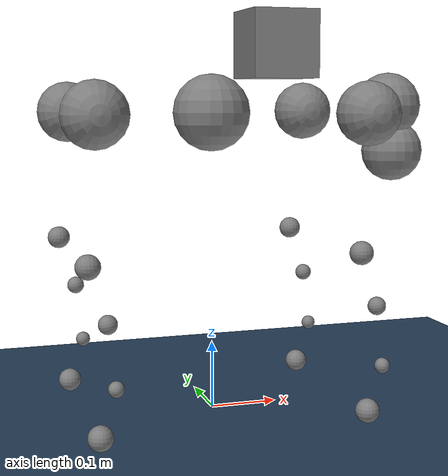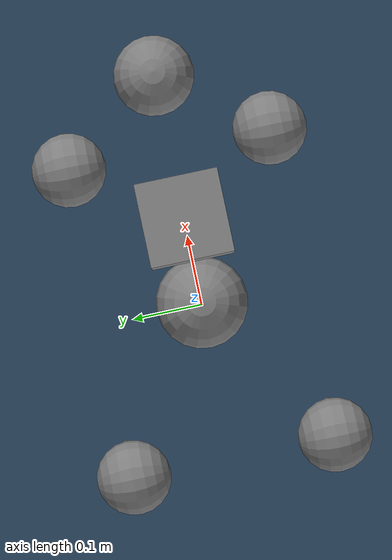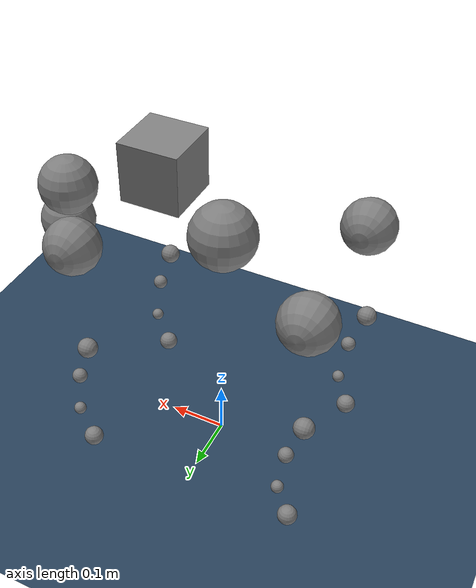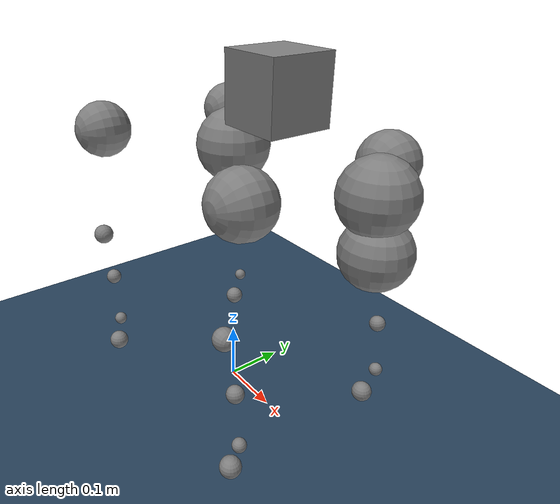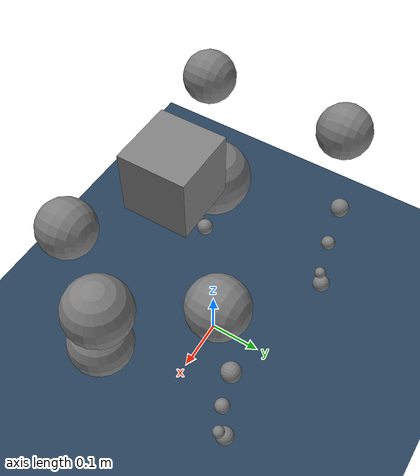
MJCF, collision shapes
<mujoco model="go2 scene">
  <include file="go2_payload.xml"/>

  <statistic center="0 0 0.1" extent="0.8"/>

  <visual>
    <headlight diffuse="0.6 0.6 0.6" ambient="0.3 0.3 0.3" specular="0 0 0"/>
    <rgba haze="0.15 0.25 0.35 1"/>
    <global azimuth="-130" elevation="-20"/>
  </visual>

  <asset>
    <texture type="skybox" builtin="gradient" rgb1="0.3 0.5 0.7" rgb2="0 0 0" width="512" height="3072"/>
    <texture type="2d" name="groundplane" builtin="checker" mark="edge" rgb1="0.2 0.3 0.4" rgb2="0.1 0.2 0.3"
      markrgb="0.8 0.8 0.8" width="300" height="300"/>
    <material name="groundplane" texture="groundplane" texuniform="true" texrepeat="5 5" reflectance="0.2"/>
  </asset>

  <worldbody>
    <light pos="0 0 1.5" dir="0 0 -1" directional="true"/>
    <geom name="floor" size="0 0 0.05" type="plane" material="groundplane" friction="5 0.2 0.1"/>
  </worldbody>
</mujoco>

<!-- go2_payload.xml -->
<mujoco model="go2">
  <compiler angle="radian" meshdir="assets" autolimits="false"/>

  <option timestep="0.005" impratio="5"/>
  <option cone="pyramidal" impratio="100" iterations="1" ls_iterations="5">
    <flag eulerdamp="disable"/>
  </option>

  <contact>
    <!-- Exclude collisions between all body parts -->

    <!-- Exclude trunk with thigh, hip and foot -->
    <exclude body1="FR_hip" body2="trunk"/>
    <exclude body1="FL_hip" body2="trunk"/>
    <exclude body1="RR_hip" body2="trunk"/>
    <exclude body1="RL_hip" body2="trunk"/>

    <exclude body1="FR_thigh" body2="trunk"/>
    <exclude body1="FL_thigh" body2="trunk"/>
    <exclude body1="RR_thigh" body2="trunk"/>
    <exclude body1="RL_thigh" body2="trunk"/>

    <exclude body1="FR_calf" body2="trunk"/>
    <exclude body1="FL_calf" body2="trunk"/>
    <exclude body1="RR_calf" body2="trunk"/>
    <exclude body1="RL_calf" body2="trunk"/>

    <exclude body1="FR_foot" body2="trunk"/>
    <exclude body1="FL_foot" body2="trunk"/>
    <exclude body1="RR_foot" body2="trunk"/>
    <exclude body1="RL_foot" body2="trunk"/>

    <!-- Exclude collisions between hips and thights -->
    <exclude body1="FR_hip" body2="FR_thigh"/>
    <exclude body1="FR_hip" body2="FL_thigh"/>
    <exclude body1="FR_hip" body2="RR_thigh"/>
    <exclude body1="FR_hip" body2="RL_thigh"/>

    <exclude body1="FL_hip" body2="FR_thigh"/>
    <exclude body1="FL_hip" body2="FL_thigh"/>
    <exclude body1="FL_hip" body2="RR_thigh"/>
    <exclude body1="FL_hip" body2="RL_thigh"/>

    <exclude body1="RR_hip" body2="FR_thigh"/>
    <exclude body1="RR_hip" body2="FL_thigh"/>
    <exclude body1="RR_hip" body2="RR_thigh"/>
    <exclude body1="RR_hip" body2="RL_thigh"/>

    <exclude body1="RL_hip" body2="FR_thigh"/>
    <exclude body1="RL_hip" body2="FL_thigh"/>
    <exclude body1="RL_hip" body2="RR_thigh"/>
    <exclude body1="RL_hip" body2="RL_thigh"/>

    <!-- Exclude collisions between hips and calfs -->
    <exclude body1="FR_hip" body2="FR_calf"/>
    <exclude body1="FR_hip" body2="FL_calf"/>
    <exclude body1="FR_hip" body2="RR_calf"/>
    <exclude body1="FR_hip" body2="RL_calf"/>

    <exclude body1="FL_hip" body2="FR_calf"/>
    <exclude body1="FL_hip" body2="FL_calf"/>
    <exclude body1="FL_hip" body2="RR_calf"/>
    <exclude body1="FL_hip" body2="RL_calf"/>

    <exclude body1="RR_hip" body2="FR_calf"/>
    <exclude body1="RR_hip" body2="FL_calf"/>
    <exclude body1="RR_hip" body2="RR_calf"/>
    <exclude body1="RR_hip" body2="RL_calf"/>

    <exclude body1="RL_hip" body2="FR_calf"/>
    <exclude body1="RL_hip" body2="FL_calf"/>
    <exclude body1="RL_hip" body2="RR_calf"/>
    <exclude body1="RL_hip" body2="RL_calf"/>

    <!-- Exclude collisions between hips and feet -->
    <exclude body1="FR_hip" body2="FR_foot"/>
    <exclude body1="FR_hip" body2="FL_foot"/>
    <exclude body1="FR_hip" body2="RR_foot"/>
    <exclude body1="FR_hip" body2="RL_foot"/>

    <exclude body1="FL_hip" body2="FR_foot"/>
    <exclude body1="FL_hip" body2="FL_foot"/>
    <exclude body1="FL_hip" body2="RR_foot"/>
    <exclude body1="FL_hip" body2="RL_foot"/>

    <exclude body1="RR_hip" body2="FR_foot"/>
    <exclude body1="RR_hip" body2="FL_foot"/>
    <exclude body1="RR_hip" body2="RR_foot"/>
    <exclude body1="RR_hip" body2="RL_foot"/>

    <exclude body1="RL_hip" body2="FR_foot"/>
    <exclude body1="RL_hip" body2="FL_foot"/>
    <exclude body1="RL_hip" body2="RR_foot"/>
    <exclude body1="RL_hip" body2="RL_foot"/>

    <!-- Exclude collisions between thighs and feet -->
    <exclude body1="FR_thigh" body2="FR_foot"/>
    <exclude body1="FR_thigh" body2="FL_foot"/>
    <exclude body1="FR_thigh" body2="RR_foot"/>
    <exclude body1="FR_thigh" body2="RL_foot"/>

    <exclude body1="FL_thigh" body2="FR_foot"/>
    <exclude body1="FL_thigh" body2="FL_foot"/>
    <exclude body1="FL_thigh" body2="RR_foot"/>
    <exclude body1="FL_thigh" body2="RL_foot"/>

    <exclude body1="RR_thigh" body2="FR_foot"/>
    <exclude body1="RR_thigh" body2="FL_foot"/>
    <exclude body1="RR_thigh" body2="RR_foot"/>
    <exclude body1="RR_thigh" body2="RL_foot"/>

    <exclude body1="RL_thigh" body2="FR_foot"/>
    <exclude body1="RL_thigh" body2="FL_foot"/>
    <exclude body1="RL_thigh" body2="RR_foot"/>
    <exclude body1="RL_thigh" body2="RL_foot"/>

    <!-- Exclude collisions between calfs and thighs -->
    <exclude body1="FR_calf" body2="FR_thigh"/>
    <exclude body1="FR_calf" body2="FL_thigh"/>
    <exclude body1="FR_calf" body2="RR_thigh"/>
    <exclude body1="FR_calf" body2="RL_thigh"/>

    <exclude body1="FL_calf" body2="FR_thigh"/>
    <exclude body1="FL_calf" body2="FL_thigh"/>
    <exclude body1="FL_calf" body2="RR_thigh"/>
    <exclude body1="FL_calf" body2="RL_thigh"/>

    <exclude body1="RR_calf" body2="FR_thigh"/>
    <exclude body1="RR_calf" body2="FL_thigh"/>
    <exclude body1="RR_calf" body2="RR_thigh"/>
    <exclude body1="RR_calf" body2="RL_thigh"/>

    <exclude body1="RL_calf" body2="FR_thigh"/>
    <exclude body1="RL_calf" body2="FL_thigh"/>
    <exclude body1="RL_calf" body2="RR_thigh"/>
    <exclude body1="RL_calf" body2="RL_thigh"/>

    <!-- Exclude collisions between calfs and feet -->
    <exclude body1="FR_calf" body2="FR_foot"/>
    <exclude body1="FR_calf" body2="FL_foot"/>
    <exclude body1="FR_calf" body2="RR_foot"/>
    <exclude body1="FR_calf" body2="RL_foot"/>

    <exclude body1="FL_calf" body2="FR_foot"/>
    <exclude body1="FL_calf" body2="FL_foot"/>
    <exclude body1="FL_calf" body2="RR_foot"/>
    <exclude body1="FL_calf" body2="RL_foot"/>

    <exclude body1="RR_calf" body2="FR_foot"/>
    <exclude body1="RR_calf" body2="FL_foot"/>
    <exclude body1="RR_calf" body2="RR_foot"/>
    <exclude body1="RR_calf" body2="RL_foot"/>

    <exclude body1="RL_calf" body2="FR_foot"/>
    <exclude body1="RL_calf" body2="FL_foot"/>
    <exclude body1="RL_calf" body2="RR_foot"/>
    <exclude body1="RL_calf" body2="RL_foot"/>

    <!-- Exclude hips, thigh, calfs and feet between each other -->
    <exclude body1="FR_hip" body2="FL_hip"/>
    <exclude body1="FR_hip" body2="RR_hip"/>
    <exclude body1="FR_hip" body2="RL_hip"/>
    <exclude body1="FL_hip" body2="RR_hip"/>
    <exclude body1="FL_hip" body2="RL_hip"/>
    <exclude body1="RR_hip" body2="RL_hip"/>

    <exclude body1="FR_thigh" body2="FL_thigh"/>
    <exclude body1="FR_thigh" body2="RR_thigh"/>
    <exclude body1="FR_thigh" body2="RL_thigh"/>
    <exclude body1="FL_thigh" body2="RR_thigh"/>
    <exclude body1="FL_thigh" body2="RL_thigh"/>
    <exclude body1="RR_thigh" body2="RL_thigh"/>

    <exclude body1="FR_calf" body2="FL_calf"/>
    <exclude body1="FR_calf" body2="RR_calf"/>
    <exclude body1="FR_calf" body2="RL_calf"/>
    <exclude body1="FL_calf" body2="RR_calf"/>
    <exclude body1="FL_calf" body2="RL_calf"/>
    <exclude body1="RR_calf" body2="RL_calf"/>

    <exclude body1="FR_foot" body2="FL_foot"/>
    <exclude body1="FR_foot" body2="RR_foot"/>
    <exclude body1="FR_foot" body2="RL_foot"/>
    <exclude body1="FL_foot" body2="RR_foot"/>
    <exclude body1="FL_foot" body2="RL_foot"/>
    <exclude body1="RR_foot" body2="RL_foot"/>
  </contact>

  <default>
    <default class="go2">
      <geom friction="0.6" condim="3"/>
      <joint axis="0 1 0" armature="0.01"/>
      <default class="abduction">
        <joint axis="1 0 0" />
      </default>
      <default class="hip">
        <default class="front_hip">
        </default>
        <default class="back_hip">
        </default>
      </default>
      <default class="knee">
      </default>
      <default class="visual">
        <geom type="mesh" contype="0" conaffinity="0" group="2"/>
      </default>
      <default class="collision">
        <geom group="3"/>
        <default class="foot">
          <geom size="0.0175" priority="1" solimp="0.015 1 0.031" condim="3"
            friction="0.8 0.02 0.01"/>
        </default>
      </default>
    </default>
  </default>

  <asset>
    <material name="metal" rgba=".9 .95 .95 1"/>
    <material name="black" rgba="0 0 0 1"/>
    <material name="white" rgba="1 1 1 1"/>
    <material name="gray" rgba="0.671705 0.692426 0.774270 1"/>

    <mesh name="base_0" file="base_0.obj"/>
    <mesh name="base_1" file="base_1.obj"/>
    <mesh name="base_2" file="base_2.obj"/>
    <mesh name="base_3" file="base_3.obj"/>
    <mesh name="base_4" file="base_4.obj"/>
    <mesh name="hip_0" file="hip_0.obj"/>
    <mesh name="hip_1" file="hip_1.obj"/>
    <mesh name="thigh_0" file="thigh_0.obj"/>
    <mesh name="thigh_1" file="thigh_1.obj"/>
    <mesh name="thigh_mirror_0" file="thigh_mirror_0.obj"/>
    <mesh name="thigh_mirror_1" file="thigh_mirror_1.obj"/>
    <mesh name="calf_0" file="calf_0.obj"/>
    <mesh name="calf_1" file="calf_1.obj"/>
    <mesh name="calf_mirror_0" file="calf_mirror_0.obj"/>
    <mesh name="calf_mirror_1" file="calf_mirror_1.obj"/>
    <mesh file="foot.obj"/>
  </asset>

  <worldbody>
    <light name="spotlight" mode="targetbodycom" target="trunk" pos="0 -1 2"/>
    <body name="trunk" pos="0 0 0.445" childclass="go2">

      <camera name="tracking" mode="trackcom" pos="0 -1 0.8" xyaxes="1 0 0 0 1 1"/>
      <inertial pos="0.021112 0 -0.005366" quat="-0.000543471 0.713435 -0.00173769 0.700719" mass="6.921"
        diaginertia="0.107027 0.0980771 0.0244531"/>
      <joint name="floating" type="free"/>
      <geom name="base_mirror_0" mesh="base_0" material="black" class="visual"/>
      <geom name="base_mirror_1" mesh="base_1" material="black" class="visual"/>
      <geom name="base_mirror_2" mesh="base_2" material="black" class="visual"/>
      <geom name="base_mirror_3" mesh="base_3" material="white" class="visual"/>
      <geom name="base_mirror_4" mesh="base_4" material="gray" class="visual"/>
      <geom name="base_0" size="0.057 0.04675 0.057" class="collision"/>
      <geom name="base_1" size="0.05 0.045" pos="0.285 0 0.01" class="collision"/>
      <geom name="base_2" size="0.047" pos="0.293 0 -0.06" class="collision"/>
      <site name="imu" pos="-0.02557 0 0.04232"/>
      <body name="payload_body" pos="0.1 0 0.1">
        <geom name="payload" type="box" size="0.05 0.05 0.05" rgba="0.5 0.5 0.5 1"/>
        <inertial pos="0 0 0" mass="10.0" diaginertia="0.1 0.1 0.1"/>
      </body>

      <body name="FR_hip" pos="0.1934 -0.0465 0">
        <inertial pos="-0.0054 -0.00194 -0.000105" quat="0.498237 0.505462 0.499245 0.497014" mass="0.678"
          diaginertia="0.00088403 0.000596003 0.000479967"/>
        <joint name="FR_hip_joint" class="abduction"/>
        <geom name="FR_hip_0" mesh="hip_0" material="metal" class="visual" quat="4.63268e-05 1 0 0"/>
        <geom name="FR_hip_1" mesh="hip_1" material="gray" class="visual" quat="4.63268e-05 1 0 0"/>
        <geom name="FR_hip" size="0.046 0.02" pos="0 -0.08 0" quat="0.707107 0.707107 0 0" class="collision"/>
        <body name="FR_thigh" pos="0 -0.0955 0">
          <inertial pos="-0.00374 0.0223 -0.0327" quat="0.551623 -0.0200632 0.0847635 0.829533" mass="1.152"
            diaginertia="0.00594973 0.00584149 0.000878787"/>
          <joint name="FR_thigh_joint" class="front_hip"/>
           <geom name="FR_thigh_mirror_0" mesh="thigh_mirror_0" material="metal" class="visual"/>
          <geom name="FR_thigh_mirror_1" mesh="thigh_mirror_1" material="gray" class="visual"/>
          <geom name="FR_thigh" size="0.017 0.01225 0.017" pos="-0.015 0 -0.1955" quat="0.707107 0 0.707107 0" class="collision"/>
          <body name="FR_calf" pos="0 0 -0.213">
            <inertial pos="0.00629595 0.000622121 -0.141417" quat="0.703508 -0.00450087 0.00154099 0.710672"
              mass="0.241352" diaginertia="0.0014901 0.00146356 5.31397e-05"/>
            <joint name="FR_calf_joint" class="knee"/>
             <geom name="FR_calf_mirror_0" mesh="calf_mirror_0" material="gray" class="visual"/>
            <geom name="FR_calf_mirror_1" mesh="calf_mirror_1" material="black" class="visual"/>
            <geom name="FR_calf_0" size="0.013 0.06" pos="0.01 0 -0.06" quat="0.995004 0 -0.0998334 0" class="collision"/>
            <geom name="FR_calf_1" size="0.011 0.0325" pos="0.02 0 -0.148" quat="0.999688 0 0.0249974 0" class="collision"/>
            <body name="FR_foot" pos="-0.002 0 -0.213">
              <geom mesh="foot" class="visual" material="black"/>
              <geom name="FR" class="foot"/>
              <site name="FR" type="sphere" size="0.023" group="5"/>
            </body>
          </body>
        </body>
      </body>
      <body name="FL_hip" pos="0.1934 0.0465 0">
        <inertial pos="-0.0054 0.00194 -0.000105" quat="0.497014 0.499245 0.505462 0.498237" mass="0.678"
          diaginertia="0.00088403 0.000596003 0.000479967"/>
        <joint name="FL_hip_joint" class="abduction"/>
        <geom name="FL_hip_0" mesh="hip_0" material="metal" class="visual"/>
        <geom name="FL_hip_1" mesh="hip_1" material="gray" class="visual"/>
        <geom name="FL_hip" size="0.046 0.02" pos="0 0.08 0" quat="0.707107 0.707107 0 0" class="collision"/>
        <body name="FL_thigh" pos="0 0.0955 0">
          <inertial pos="-0.00374 -0.0223 -0.0327" quat="0.829533 0.0847635 -0.0200632 0.551623" mass="1.152"
            diaginertia="0.00594973 0.00584149 0.000878787"/>
          <joint name="FL_thigh_joint" class="front_hip"/>
          <geom name="FL_thigh_0" mesh="thigh_0" material="metal" class="visual"/>
          <geom name="FL_thigh_1" mesh="thigh_1" material="gray" class="visual"/>
          <geom name="FL_thigh" size="0.017 0.01225 0.017" pos="-0.015 0 -0.1955" quat="0.707107 0 0.707107 0" class="collision"/>
          <body name="FL_calf" pos="0 0 -0.213">
            <inertial pos="0.00629595 -0.000622121 -0.141417" quat="0.710672 0.00154099 -0.00450087 0.703508"
              mass="0.241352" diaginertia="0.0014901 0.00146356 5.31397e-05"/>
            <joint name="FL_calf_joint" class="knee"/>
            <geom name="FL_calf_mirror_0" mesh="calf_0" material="gray" class="visual"/>
            <geom name="FL_calf_mirror_1" mesh="calf_1" material="black" class="visual"/>
            <geom name="FL_calf_0" size="0.013 0.06" pos="0.01 0 -0.06" quat="0.995004 0 -0.0998334 0" class="collision"/>
            <geom name="FL_calf_1" size="0.011 0.0325" pos="0.02 0 -0.148" quat="0.999688 0 0.0249974 0" class="collision"/>
            <body name="FL_foot" pos="-0.002 0 -0.213">
              <geom mesh="foot" class="visual" material="black"/>
              <geom name="FL" class="foot"/>
              <site name="FL" type="sphere" size="0.023" rgba="1 0 0 1" group="5"/>
            </body>
          </body>
        </body>
      </body>

      <body name="RR_hip" pos="-0.1934 -0.0465 0">
        <inertial pos="0.0054 -0.00194 -0.000105" quat="0.499245 0.497014 0.498237 0.505462" mass="0.678"
          diaginertia="0.00088403 0.000596003 0.000479967"/>
        <joint name="RR_hip_joint" class="abduction"/>
        <geom name="RR_hip_0" mesh="hip_0" material="metal" class="visual" quat="2.14617e-09 4.63268e-05 4.63268e-05 -1"/>
        <geom name="RR_hip_1" mesh="hip_1" material="gray" class="visual" quat="2.14617e-09 4.63268e-05 4.63268e-05 -1"/>
        <geom name="RR_hip" size="0.046 0.02" pos="0 -0.08 0" quat="0.707107 0.707107 0 0" class="collision"/>
        <body name="RR_thigh" pos="0 -0.0955 0">
          <inertial pos="-0.00374 0.0223 -0.0327" quat="0.551623 -0.0200632 0.0847635 0.829533" mass="1.152"
            diaginertia="0.00594973 0.00584149 0.000878787"/>
          <joint name="RR_thigh_joint" class="back_hip"/>
          <geom name="RR_thigh_mirror_0" mesh="thigh_mirror_0" material="metal" class="visual"/>
          <geom name="RR_thigh_mirror_1" mesh="thigh_mirror_1" material="gray" class="visual"/>
           <geom name="RR_thigh" size="0.017 0.01225 0.017" pos="-0.015 0 -0.1955" quat="0.707107 0 0.707107 0" class="collision"/>
          <body name="RR_calf" pos="0 0 -0.213">
            <inertial pos="0.00629595 0.000622121 -0.141417" quat="0.703508 -0.00450087 0.00154099 0.710672"
              mass="0.241352" diaginertia="0.0014901 0.00146356 5.31397e-05"/>
            <joint name="RR_calf_joint" class="knee"/>
            <geom name="RR_calf_mirror_0" mesh="calf_mirror_0" material="gray" class="visual"/>
            <geom name="RR_calf_mirror_1" mesh="calf_mirror_1" material="black" class="visual"/>
            <geom name="RR_calf_0" size="0.013 0.06" pos="0.01 0 -0.06" quat="0.995004 0 -0.0998334 0" class="collision"/>
            <geom name="RR_calf_1" size="0.011 0.0325" pos="0.02 0 -0.148" quat="0.999688 0 0.0249974 0" class="collision"/>
            <body name="RR_foot" pos="-0.002 0 -0.213">
              <geom mesh="foot" class="visual" material="black"/>
              <geom name="RR" class="foot"/>
              <site name="RR" type="sphere" size="0.023" group="5"/>
            </body>
          </body>
        </body>
      </body>
      <body name="RL_hip" pos="-0.1934 0.0465 0">
        <inertial pos="0.0054 0.00194 -0.000105" quat="0.505462 0.498237 0.497014 0.499245" mass="0.678"
          diaginertia="0.00088403 0.000596003 0.000479967"/>
        <joint name="RL_hip_joint" class="abduction"/>
        <geom name="RL_hip_0" mesh="hip_0" material="metal" class="visual" quat="4.63268e-05 0 1 0"/>
        <geom name="RL_hip_1" mesh="hip_1" material="gray" class="visual" quat="4.63268e-05 0 1 0"/>
        <geom name="RL_hip" size="0.046 0.02" pos="0 0.08 0" quat="0.707107 0.707107 0 0" class="collision"/>
        <body name="RL_thigh" pos="0 0.0955 0">
          <inertial pos="-0.00374 -0.0223 -0.0327" quat="0.829533 0.0847635 -0.0200632 0.551623" mass="1.152"
            diaginertia="0.00594973 0.00584149 0.000878787"/>
          <joint name="RL_thigh_joint" class="back_hip"/>
          <geom name="RL_thigh_0" mesh="thigh_0" material="metal" class="visual"/>
          <geom name="RL_thigh_1" mesh="thigh_1" material="gray" class="visual"/>
          <geom name="RL_thigh" size="0.017 0.01225 0.017" pos="-0.015 0 -0.1955" quat="0.707107 0 0.707107 0" class="collision"/>
          <body name="RL_calf" pos="0 0 -0.213">
            <inertial pos="0.00629595 -0.000622121 -0.141417" quat="0.710672 0.00154099 -0.00450087 0.703508"
              mass="0.241352" diaginertia="0.0014901 0.00146356 5.31397e-05"/>
            <joint name="RL_calf_joint" class="knee"/>
            <geom name="RL_calf_mirror_0" mesh="calf_0" material="gray" class="visual"/>
            <geom name="RL_calf_mirror_1" mesh="calf_1" material="black" class="visual"/>
            <geom name="RL_calf_0" size="0.013 0.06" pos="0.01 0 -0.06" quat="0.995004 0 -0.0998334 0" class="collision"/>
            <geom name="RL_calf_1" size="0.011 0.0325" pos="0.02 0 -0.148" quat="0.999688 0 0.0249974 0" class="collision"/>
            <body name="RL_foot" pos="-0.002 0 -0.213">
              <geom mesh="foot" class="visual" material="black"/>
              <geom name="RL" class="foot"/>
              <site name="RL" type="sphere" size="0.023" group="5"/>
            </body>
          </body>
        </body>
      </body>
    </body>
  </worldbody>

  <actuator>
    <motor class="abduction" name="FR_hip" joint="FR_hip_joint"/>
    <motor class="hip" name="FR_thigh" joint="FR_thigh_joint"/>
    <motor class="knee" name="FR_calf" joint="FR_calf_joint"/>
    <motor class="abduction" name="FL_hip" joint="FL_hip_joint"/>
    <motor class="hip" name="FL_thigh" joint="FL_thigh_joint"/>
    <motor class="knee" name="FL_calf" joint="FL_calf_joint"/>
    <motor class="abduction" name="RR_hip" joint="RR_hip_joint"/>
    <motor class="hip" name="RR_thigh" joint="RR_thigh_joint"/>
    <motor class="knee" name="RR_calf" joint="RR_calf_joint"/>
    <motor class="abduction" name="RL_hip" joint="RL_hip_joint"/>
    <motor class="hip" name="RL_thigh" joint="RL_thigh_joint"/>
    <motor class="knee" name="RL_calf" joint="RL_calf_joint"/>

    <motor name="f_x" joint="floating" gear ="1 0 0 0 0 0"/>
    <motor name="f_y" joint="floating" gear ="0 1 0 0 0 0"/>
  </actuator>

  <keyframe>
    <key name="home" qpos="0 0 0.32 1 0 0 0 -0.1 0.8 -1.5 0.1 0.8 -1.5 -0.1 1.0 -1.5 0.1 1.0 -1.5"
      ctrl="-0.1 0.8 -1.5 0.1 0.8 -1.5 -0.1 1.0 -1.5 0.1 1.0 -1.5 0 0"/>
  </keyframe>
</mujoco>
